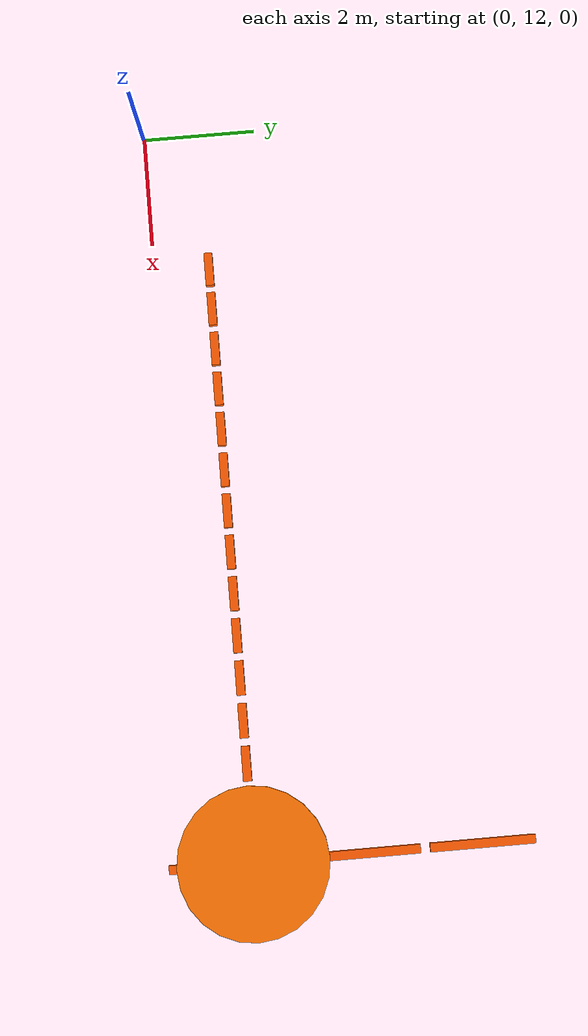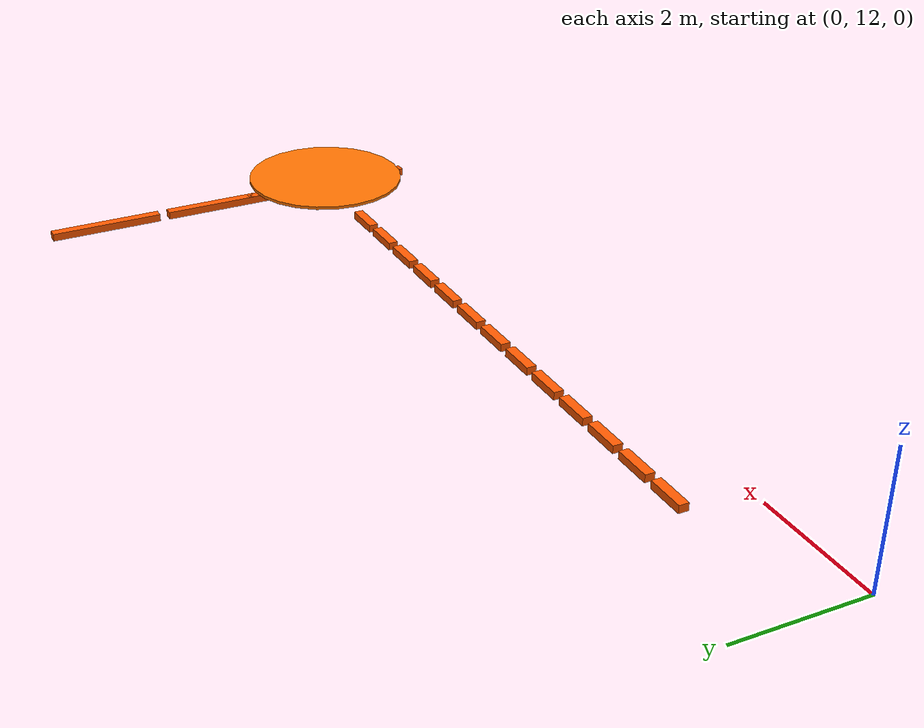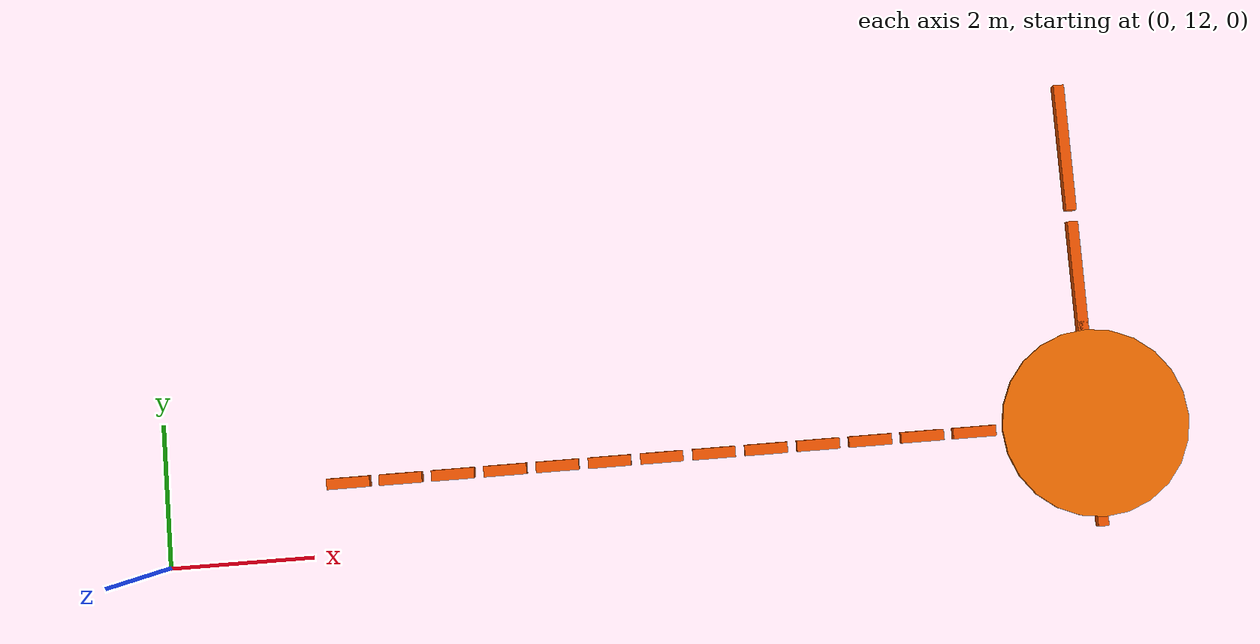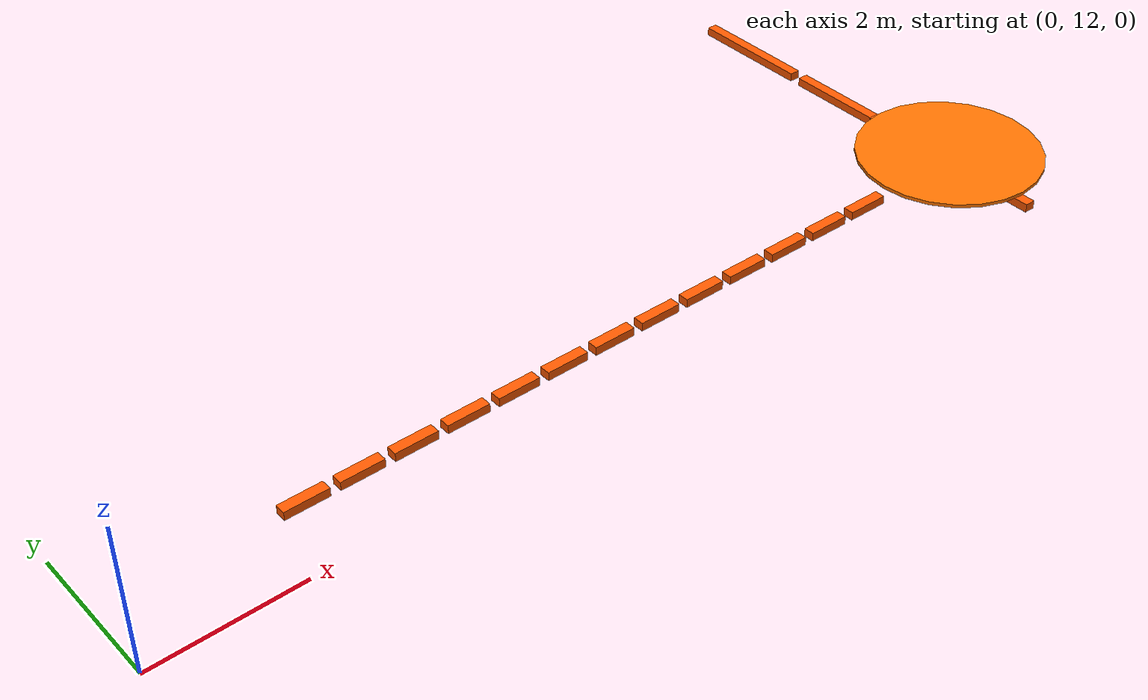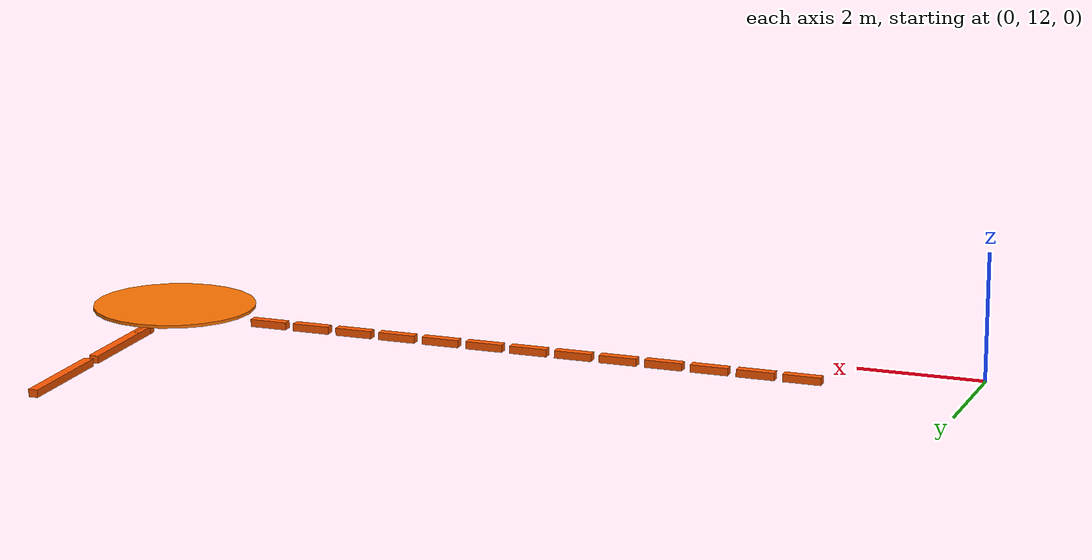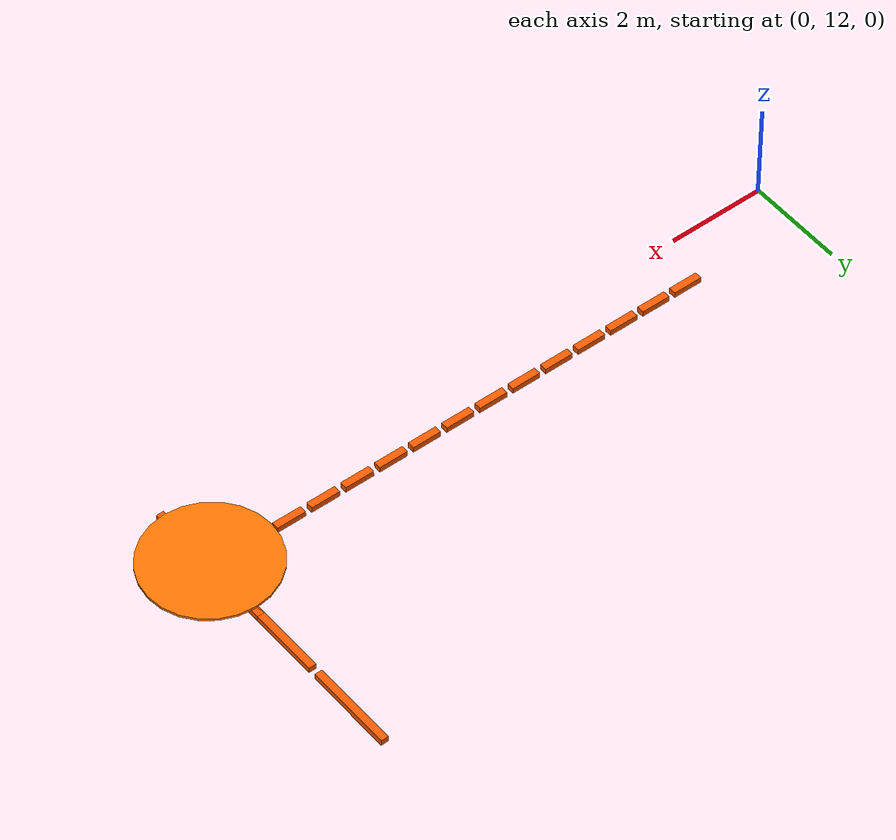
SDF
<sdf version="1.10">
 <world name="warehouse_fuel">
  <model name="track_loop_right_11">
   <static>true</static>
   <pose>13 16.9038 0.06 0 0 -1.5708</pose>
   <link name="link">
    <visual name="visual">
     <geometry><box><size>1.8 0.15 0.12</size></box></geometry>
     <material>
      <ambient>1 0.349999994 0 1</ambient>
      <diffuse>1 0.349999994 0 1</diffuse>
      <emissive>0.200000003 0.0700000003 0 1</emissive>
     </material>
    </visual>
    <inertial>
     <mass>1</mass>
     <inertia><ixx>1</ixx><ixy>0</ixy><ixz>0</ixz><iyy>1</iyy><iyz>0</iyz><izz>1</izz></inertia>
    </inertial>
   </link>
  </model>
  <model name="track_loop_right_12">
   <static>true</static>
   <pose>13 14.9423 0.06 0 0 -1.5708</pose>
   <link name="link">
    <visual name="visual">
     <geometry><box><size>1.8 0.15 0.12</size></box></geometry>
     <material>
      <ambient>1 0.349999994 0 1</ambient>
      <diffuse>1 0.349999994 0 1</diffuse>
      <emissive>0.200000003 0.0700000003 0 1</emissive>
     </material>
    </visual>
    <inertial>
     <mass>1</mass>
     <inertia><ixx>1</ixx><ixy>0</ixy><ixz>0</ixz><iyy>1</iyy><iyz>0</iyz><izz>1</izz></inertia>
    </inertial>
   </link>
  </model>
  <model name="track_ne_bridge_n_1">
   <static>true</static>
   <pose>13 14.17 0.06 0 0 1.5708</pose>
   <link name="link">
    <visual name="visual">
     <geometry><box><size>0.5 0.15 0.12</size></box></geometry>
     <material>
      <ambient>1 0.349999994 0 1</ambient>
      <diffuse>1 0.349999994 0 1</diffuse>
      <emissive>0.200000003 0.0700000003 0 1</emissive>
     </material>
    </visual>
    <inertial>
     <mass>1</mass>
     <inertia><ixx>1</ixx><ixy>0</ixy><ixz>0</ixz><iyy>1</iyy><iyz>0</iyz><izz>1</izz></inertia>
    </inertial>
   </link>
  </model>
  <model name="track_ne_bridge_s_1">
   <static>true</static>
   <pose>13 11.81 0.06 0 0 1.5708</pose>
   <link name="link">
    <visual name="visual">
     <geometry><box><size>0.5 0.15 0.12</size></box></geometry>
     <material>
      <ambient>1 0.349999994 0 1</ambient>
      <diffuse>1 0.349999994 0 1</diffuse>
      <emissive>0.200000003 0.0700000003 0 1</emissive>
     </material>
    </visual>
    <inertial>
     <mass>1</mass>
     <inertia><ixx>1</ixx><ixy>0</ixy><ixz>0</ixz><iyy>1</iyy><iyz>0</iyz><izz>1</izz></inertia>
    </inertial>
   </link>
  </model>
  <model name="track_return_ne_1">
   <static>true</static>
   <pose>11.3344 13 0.06 0 0 3.14159</pose>
   <link name="link">
    <visual name="visual">
     <geometry><box><size>0.6 0.15 0.12</size></box></geometry>
     <material>
      <ambient>1 0.349999994 0 1</ambient>
      <diffuse>1 0.349999994 0 1</diffuse>
      <emissive>0.200000003 0.0700000003 0 1</emissive>
     </material>
    </visual>
    <inertial>
     <mass>1</mass>
     <inertia><ixx>1</ixx><ixy>0</ixy><ixz>0</ixz><iyy>1</iyy><iyz>0</iyz><izz>1</izz></inertia>
    </inertial>
   </link>
  </model>
  <model name="track_return_ne_2">
   <static>true</static>
   <pose>10.6031 13 0.06 0 0 3.14159</pose>
   <link name="link">
    <visual name="visual">
     <geometry><box><size>0.6 0.15 0.12</size></box></geometry>
     <material>
      <ambient>1 0.349999994 0 1</ambient>
      <diffuse>1 0.349999994 0 1</diffuse>
      <emissive>0.200000003 0.0700000003 0 1</emissive>
     </material>
    </visual>
    <inertial>
     <mass>1</mass>
     <inertia><ixx>1</ixx><ixy>0</ixy><ixz>0</ixz><iyy>1</iyy><iyz>0</iyz><izz>1</izz></inertia>
    </inertial>
   </link>
  </model>
  <model name="track_return_ne_3">
   <static>true</static>
   <pose>9.87187 13 0.06 0 0 3.14159</pose>
   <link name="link">
    <visual name="visual">
     <geometry><box><size>0.6 0.15 0.12</size></box></geometry>
     <material>
      <ambient>1 0.349999994 0 1</ambient>
      <diffuse>1 0.349999994 0 1</diffuse>
      <emissive>0.200000003 0.0700000003 0 1</emissive>
     </material>
    </visual>
    <inertial>
     <mass>1</mass>
     <inertia><ixx>1</ixx><ixy>0</ixy><ixz>0</ixz><iyy>1</iyy><iyz>0</iyz><izz>1</izz></inertia>
    </inertial>
   </link>
  </model>
  <model name="track_return_ne_4">
   <static>true</static>
   <pose>9.14062 13 0.06 0 0 3.14159</pose>
   <link name="link">
    <visual name="visual">
     <geometry><box><size>0.6 0.15 0.12</size></box></geometry>
     <material>
      <ambient>1 0.349999994 0 1</ambient>
      <diffuse>1 0.349999994 0 1</diffuse>
      <emissive>0.200000003 0.0700000003 0 1</emissive>
     </material>
    </visual>
    <inertial>
     <mass>1</mass>
     <inertia><ixx>1</ixx><ixy>0</ixy><ixz>0</ixz><iyy>1</iyy><iyz>0</iyz><izz>1</izz></inertia>
    </inertial>
   </link>
  </model>
  <model name="track_return_ne_5">
   <static>true</static>
   <pose>8.40937 13 0.06 0 0 3.14159</pose>
   <link name="link">
    <visual name="visual">
     <geometry><box><size>0.6 0.15 0.12</size></box></geometry>
     <material>
      <ambient>1 0.349999994 0 1</ambient>
      <diffuse>1 0.349999994 0 1</diffuse>
      <emissive>0.200000003 0.0700000003 0 1</emissive>
     </material>
    </visual>
    <inertial>
     <mass>1</mass>
     <inertia><ixx>1</ixx><ixy>0</ixy><ixz>0</ixz><iyy>1</iyy><iyz>0</iyz><izz>1</izz></inertia>
    </inertial>
   </link>
  </model>
  <model name="track_return_ne_6">
   <static>true</static>
   <pose>7.67812 13 0.06 0 0 3.14159</pose>
   <link name="link">
    <visual name="visual">
     <geometry><box><size>0.6 0.15 0.12</size></box></geometry>
     <material>
      <ambient>1 0.349999994 0 1</ambient>
      <diffuse>1 0.349999994 0 1</diffuse>
      <emissive>0.200000003 0.0700000003 0 1</emissive>
     </material>
    </visual>
    <inertial>
     <mass>1</mass>
     <inertia><ixx>1</ixx><ixy>0</ixy><ixz>0</ixz><iyy>1</iyy><iyz>0</iyz><izz>1</izz></inertia>
    </inertial>
   </link>
  </model>
  <model name="track_return_ne_7">
   <static>true</static>
   <pose>6.94687 13 0.06 0 0 3.14159</pose>
   <link name="link">
    <visual name="visual">
     <geometry><box><size>0.6 0.15 0.12</size></box></geometry>
     <material>
      <ambient>1 0.349999994 0 1</ambient>
      <diffuse>1 0.349999994 0 1</diffuse>
      <emissive>0.200000003 0.0700000003 0 1</emissive>
     </material>
    </visual>
    <inertial>
     <mass>1</mass>
     <inertia><ixx>1</ixx><ixy>0</ixy><ixz>0</ixz><iyy>1</iyy><iyz>0</iyz><izz>1</izz></inertia>
    </inertial>
   </link>
  </model>
  <model name="track_return_ne_8">
   <static>true</static>
   <pose>6.21562 13 0.06 0 0 3.14159</pose>
   <link name="link">
    <visual name="visual">
     <geometry><box><size>0.6 0.15 0.12</size></box></geometry>
     <material>
      <ambient>1 0.349999994 0 1</ambient>
      <diffuse>1 0.349999994 0 1</diffuse>
      <emissive>0.200000003 0.0700000003 0 1</emissive>
     </material>
    </visual>
    <inertial>
     <mass>1</mass>
     <inertia><ixx>1</ixx><ixy>0</ixy><ixz>0</ixz><iyy>1</iyy><iyz>0</iyz><izz>1</izz></inertia>
    </inertial>
   </link>
  </model>
  <model name="track_return_ne_9">
   <static>true</static>
   <pose>5.48438 13 0.06 0 0 3.14159</pose>
   <link name="link">
    <visual name="visual">
     <geometry><box><size>0.6 0.15 0.12</size></box></geometry>
     <material>
      <ambient>1 0.349999994 0 1</ambient>
      <diffuse>1 0.349999994 0 1</diffuse>
      <emissive>0.200000003 0.0700000003 0 1</emissive>
     </material>
    </visual>
    <inertial>
     <mass>1</mass>
     <inertia><ixx>1</ixx><ixy>0</ixy><ixz>0</ixz><iyy>1</iyy><iyz>0</iyz><izz>1</izz></inertia>
    </inertial>
   </link>
  </model>
  <model name="track_return_ne_10">
   <static>true</static>
   <pose>4.75312 13 0.06 0 0 3.14159</pose>
   <link name="link">
    <visual name="visual">
     <geometry><box><size>0.6 0.15 0.12</size></box></geometry>
     <material>
      <ambient>1 0.349999994 0 1</ambient>
      <diffuse>1 0.349999994 0 1</diffuse>
      <emissive>0.200000003 0.0700000003 0 1</emissive>
     </material>
    </visual>
    <inertial>
     <mass>1</mass>
     <inertia><ixx>1</ixx><ixy>0</ixy><ixz>0</ixz><iyy>1</iyy><iyz>0</iyz><izz>1</izz></inertia>
    </inertial>
   </link>
  </model>
  <model name="track_return_ne_11">
   <static>true</static>
   <pose>4.02187 13 0.06 0 0 3.14159</pose>
   <link name="link">
    <visual name="visual">
     <geometry><box><size>0.6 0.15 0.12</size></box></geometry>
     <material>
      <ambient>1 0.349999994 0 1</ambient>
      <diffuse>1 0.349999994 0 1</diffuse>
      <emissive>0.200000003 0.0700000003 0 1</emissive>
     </material>
    </visual>
    <inertial>
     <mass>1</mass>
     <inertia><ixx>1</ixx><ixy>0</ixy><ixz>0</ixz><iyy>1</iyy><iyz>0</iyz><izz>1</izz></inertia>
    </inertial>
   </link>
  </model>
  <model name="track_return_ne_12">
   <static>true</static>
   <pose>3.29063 13 0.06 0 0 3.14159</pose>
   <link name="link">
    <visual name="visual">
     <geometry><box><size>0.6 0.15 0.12</size></box></geometry>
     <material>
      <ambient>1 0.349999994 0 1</ambient>
      <diffuse>1 0.349999994 0 1</diffuse>
      <emissive>0.200000003 0.0700000003 0 1</emissive>
     </material>
    </visual>
    <inertial>
     <mass>1</mass>
     <inertia><ixx>1</ixx><ixy>0</ixy><ixz>0</ixz><iyy>1</iyy><iyz>0</iyz><izz>1</izz></inertia>
    </inertial>
   </link>
  </model>
  <model name="track_return_ne_13">
   <static>true</static>
   <pose>2.55937 13 0.06 0 0 3.14159</pose>
   <link name="link">
    <visual name="visual">
     <geometry><box><size>0.6 0.15 0.12</size></box></geometry>
     <material>
      <ambient>1 0.349999994 0 1</ambient>
      <diffuse>1 0.349999994 0 1</diffuse>
      <emissive>0.200000003 0.0700000003 0 1</emissive>
     </material>
    </visual>
    <inertial>
     <mass>1</mass>
     <inertia><ixx>1</ixx><ixy>0</ixy><ixz>0</ixz><iyy>1</iyy><iyz>0</iyz><izz>1</izz></inertia>
    </inertial>
   </link>
  </model>
  <model name="zone_ne_disc_orange">
   <static>true</static>
   <pose>13 13 0.198 0 0 0</pose>
   <link name="link">
    <visual name="visual">
     <geometry><cylinder><radius>1.3</radius><length>0.05</length></cylinder></geometry>
     <material><ambient>1 0.449999988 0 1</ambient><diffuse>1 0.449999988 0 1</diffuse></material>
    </visual>
    <inertial>
     <mass>1</mass>
     <inertia><ixx>1</ixx><ixy>0</ixy><ixz>0</ixz><iyy>1</iyy><iyz>0</iyz><izz>1</izz></inertia>
    </inertial>
   </link>
  </model>
 </world>
</sdf>
